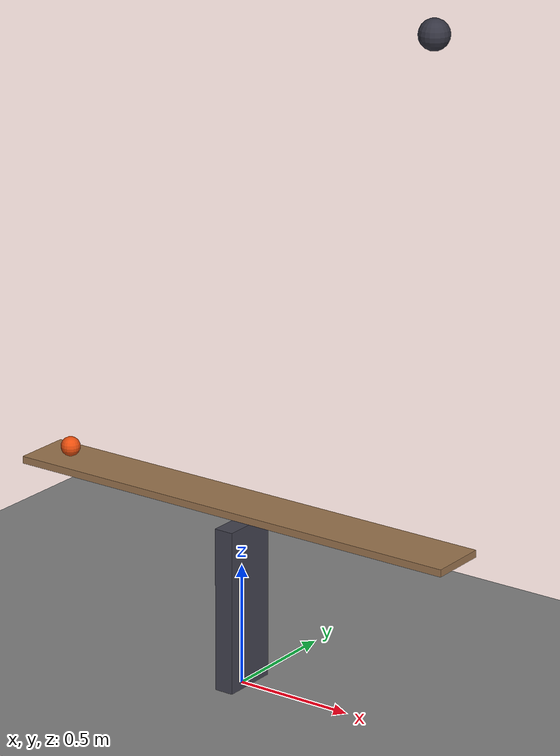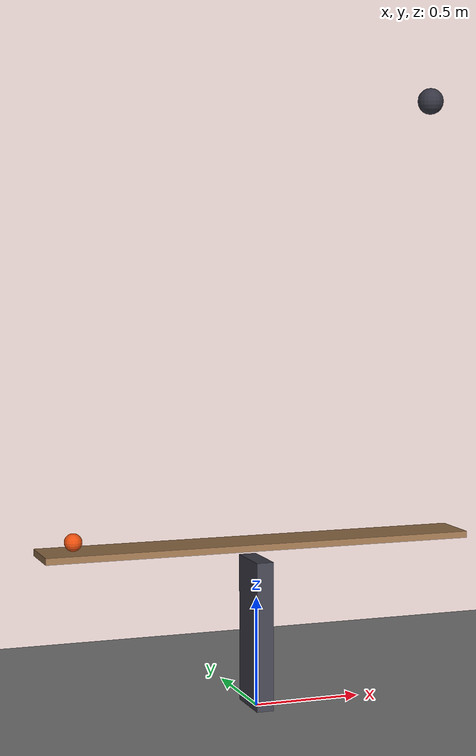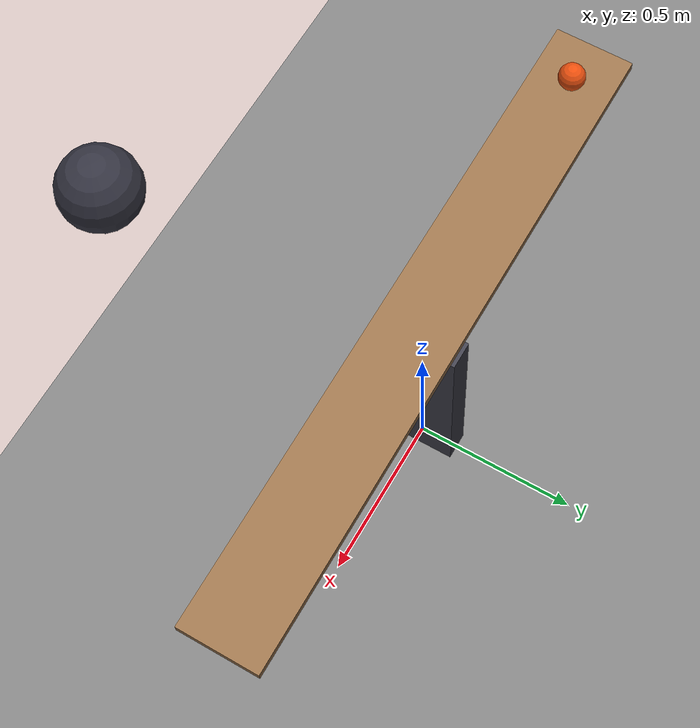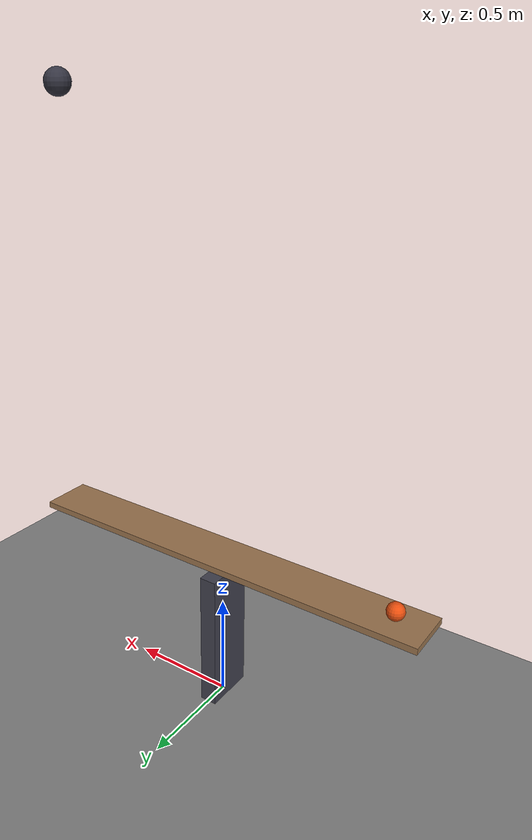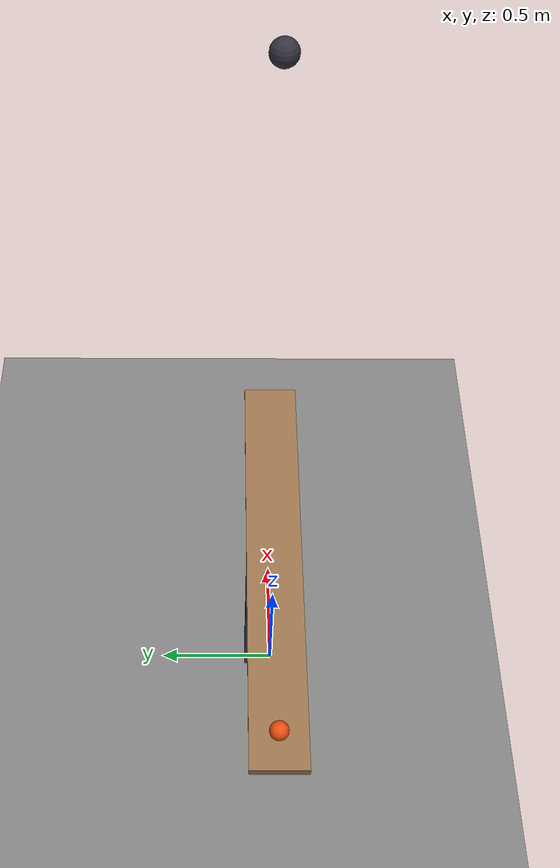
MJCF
<mujoco model="gravity_powered_seesaw">
  <compiler angle="radian"/>
  <option timestep="0.002"/>
  <worldbody>
    <geom name="floor" type="plane" size="8 8 0.1" friction="0.8 0.005 0.002"/>
    <body name="support">
      <geom name="support" type="box" pos="0 0 0.34" size="0.04 0.12 0.34" rgba="0.25 0.25 0.3 1"/>
    </body>
    <body name="seesaw" pos="0 0 0.75">
      <joint name="seesaw_hinge" type="hinge" pos="0 0 0" axis="0 1 0" limited="true" range="0 0.698132" damping="0.005"/>
      <geom name="seesaw" type="box" pos="0 0 0" size="1 0.12 0.015" mass="0.3" friction="0.5 0.002 0.001" solref="0.01 1" rgba="0.6 0.45 0.3 1"/>
    </body>
    <body name="ball" pos="-0.85 0 0.805">
      <freejoint/>
      <geom name="ball" type="sphere" pos="0 0 0" size="0.04" mass="0.1" condim="6" friction="0.5 0.002 0.001" solref="0.01 1" rgba="0.9 0.3 0.05 1"/>
    </body>
    <body name="weight" pos="0.85 0 2.75">
      <freejoint/>
      <geom name="weight" type="sphere" pos="0 0 0" size="0.06" mass="1" condim="6" friction="0.5 0.002 0.001" solref="0.01 1" rgba="0.2 0.2 0.25 1"/>
    </body>
  </worldbody>
  <keyframe>
    <key name="start" qpos="0 -0.85 0 0.805 1 0 0 0 0.85 0 2.75 1 0 0 0" qvel="0 0 0 0 0 0 0 0 0 0 0 0 0"/>
  </keyframe>
</mujoco>
